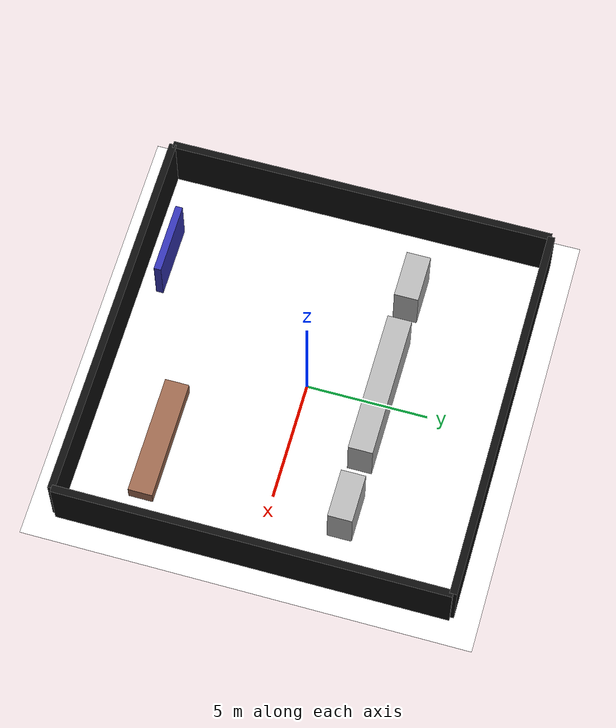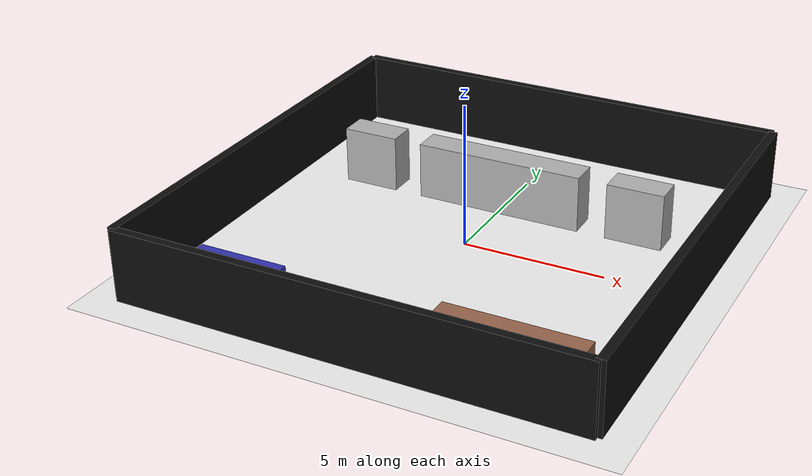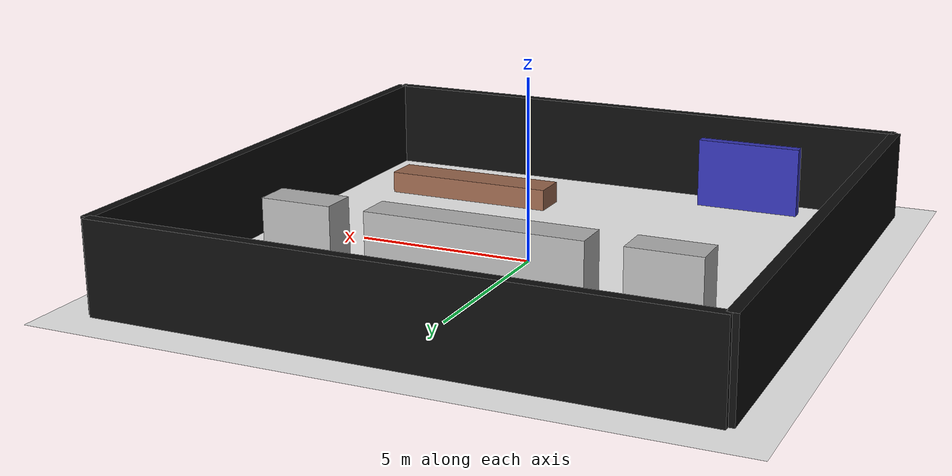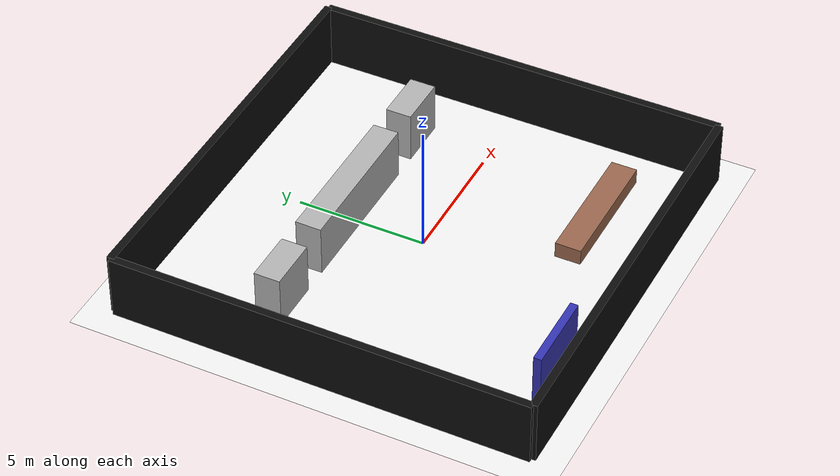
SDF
<?xml version="1.0" ?>
<sdf version="1.9">
  <world name="logistics_world">

    <!-- Physics -->
    <physics name="default_physics" type="ode">
      <max_step_size>0.001</max_step_size>
      <real_time_factor>1.0</real_time_factor>
    </physics>

    <!-- Light -->
    <light name="sun" type="directional">
      <pose>0 0 15 0 0 0</pose>
      <direction>-0.3 -0.3 -1</direction>
      <diffuse>1 1 1 1</diffuse>
    </light>

    <!-- Ground -->
    <model name="ground_plane">
      <static>true</static>
      <link name="ground">
        <collision name="collision">
          <geometry>
            <plane>
              <normal>0 0 1</normal>
              <size>40 40</size>
            </plane>
          </geometry>
        </collision>
        <visual name="visual">
          <geometry>
            <plane>
              <normal>0 0 1</normal>
              <size>40 40</size>
            </plane>
          </geometry>
          <material>
            <diffuse>0.95 0.95 0.95 1</diffuse>
          </material>
        </visual>
      </link>
    </model>

    <!-- Shelves -->
    <model name="shelf_1">
      <static>true</static>
      <pose>-5 3 1 0 0 0</pose>
      <link name="shelf">
        <collision name="collision">
          <geometry><box><size>2 1 2</size></box></geometry>
        </collision>
        <visual name="visual">
          <geometry><box><size>2 1 2</size></box></geometry>
          <material><diffuse>0.7 0.7 0.7 1</diffuse></material>
        </visual>
      </link>
    </model>

    <model name="shelf_2">
      <static>true</static>
      <pose>0 3 1 0 0 0</pose>
      <link name="shelf">
        <collision name="collision">
          <geometry><box><size>6 1 2</size></box></geometry>
        </collision>
        <visual name="visual">
          <geometry><box><size>6 1 2</size></box></geometry>
          <material><diffuse>0.7 0.7 0.7 1</diffuse></material>
        </visual>
      </link>
    </model>

    <model name="shelf_3">
      <static>true</static>
      <pose>5 3 1 0 0 0</pose>
      <link name="shelf">
        <collision name="collision">
          <geometry><box><size>2 1 2</size></box></geometry>
        </collision>
        <visual name="visual">
          <geometry><box><size>2 1 2</size></box></geometry>
          <material><diffuse>0.7 0.7 0.7 1</diffuse></material>
        </visual>
      </link>
    </model>

    <!-- Assembly Line -->
    <model name="assembly_line">
      <static>true</static>
      <pose>4 -5 0 0 0 0</pose>
      <link name="line">
        <collision name="collision">
          <geometry><box><size>5 1 1.2</size></box></geometry>
        </collision>
        <visual name="visual">
          <geometry><box><size>5 1 1.2</size></box></geometry>
          <material><diffuse>0.6 0.4 0.3 1</diffuse></material>
        </visual>
      </link>
    </model>

    <!-- Dock -->
    <model name="dock_wall">
      <static>true</static>
      <pose>-4 -7 1 0 0 0</pose>
      <link name="wall">
        <collision name="collision">
          <geometry><box><size>3 0.3 2</size></box></geometry>
        </collision>
        <visual name="visual">
          <geometry><box><size>3 0.3 2</size></box></geometry>
          <material><diffuse>0.2 0.2 0.7 1</diffuse></material>
        </visual>
      </link>
    </model>

    <!-- Walls -->
    <model name="wall_north">
      <static>true</static>
      <pose>0 8 1.25 0 0 0</pose>
      <link name="wall">
        <collision name="collision">
          <geometry><box><size>16 0.3 2.5</size></box></geometry>
        </collision>
        <visual name="visual">
          <geometry><box><size>16 0.3 2.5</size></box></geometry>
          <material><diffuse>0.05 0.05 0.05 1</diffuse></material>
        </visual>
      </link>
    </model>

    <model name="wall_south">
      <static>true</static>
      <pose>0 -8 1.25 0 0 0</pose>
      <link name="wall">
        <collision name="collision">
          <geometry><box><size>16 0.3 2.5</size></box></geometry>
        </collision>
        <visual name="visual">
          <geometry><box><size>16 0.3 2.5</size></box></geometry>
          <material><diffuse>0.05 0.05 0.05 1</diffuse></material>
        </visual>
      </link>
    </model>

    <model name="wall_west">
      <static>true</static>
      <pose>-8 0 1.25 0 0 0</pose>
      <link name="wall">
        <collision name="collision">
          <geometry><box><size>0.3 16 2.5</size></box></geometry>
        </collision>
        <visual name="visual">
          <geometry><box><size>0.3 16 2.5</size></box></geometry>
          <material><diffuse>0.05 0.05 0.05 1</diffuse></material>
        </visual>
      </link>
    </model>

    <model name="wall_east">
      <static>true</static>
      <pose>8 0 1.25 0 0 0</pose>
      <link name="wall">
        <collision name="collision">
          <geometry><box><size>0.3 16 2.5</size></box></geometry>
        </collision>
        <visual name="visual">
          <geometry><box><size>0.3 16 2.5</size></box></geometry>
          <material><diffuse>0.05 0.05 0.05 1</diffuse></material>
        </visual>
      </link>
    </model>

  </world>
</sdf>
